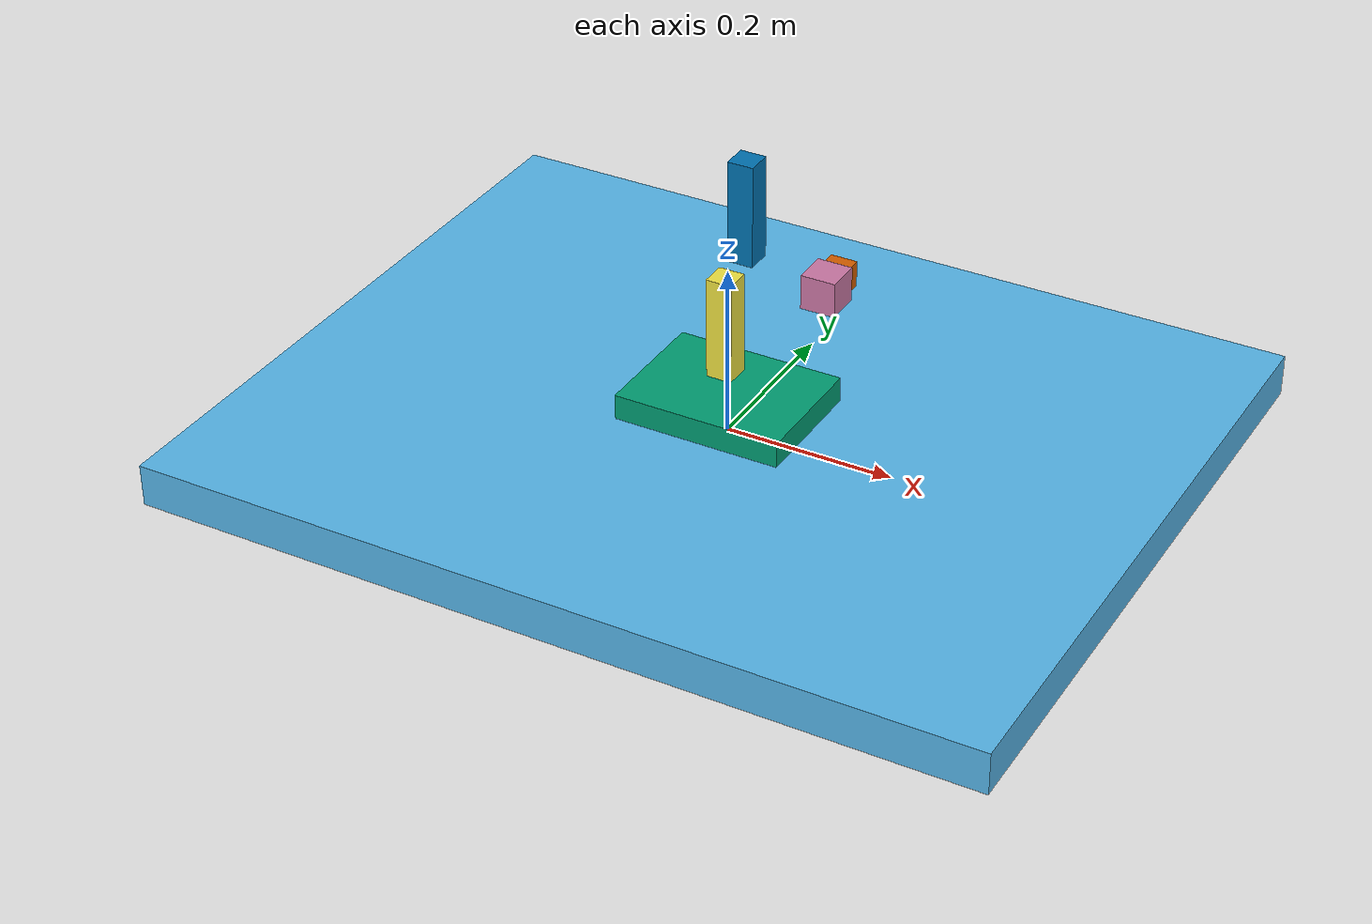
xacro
<?xml version="1.0"?>
<!-- 二分变体: 只保留 table+底盘回转+arm_1+arm_2+括架+爪基座, 无手指链无装饰 mesh -->
<robot name="ep_skel">
  <link name="world"/>
  <link name="table_link">
    <inertial><mass value="10"/><inertia ixx="1" ixy="0" ixz="0" iyy="1" iyz="0" izz="1"/></inertial>
    <visual><geometry><box size="1.0 0.8 0.05"/></geometry></visual>
    <collision><geometry><box size="1.0 0.8 0.05"/></geometry></collision>
  </link>
  <joint name="table_joint" type="fixed">
    <parent link="world"/><child link="table_link"/><origin xyz="0 0 0" rpy="0 0 0"/>
  </joint>
  <joint name="chassis_yaw_joint" type="revolute">
    <parent link="table_link"/><child link="base_link"/>
    <origin xyz="0 0 0.025" rpy="0 0 0"/><axis xyz="0 0 1"/>
    <limit effort="4" velocity="3.14" lower="-6.2832" upper="6.2832"/>
  </joint>
  <link name="base_link">
    <inertial><mass value="1.0"/><inertia ixx="0.01" ixy="0" ixz="0" iyy="0.01" iyz="0" izz="0.01"/></inertial>
    <visual><geometry><box size="0.2 0.15 0.06"/></geometry></visual>
    <collision><geometry><box size="0.2 0.15 0.06"/></geometry></collision>
  </link>
  <joint name="arm_1_joint" type="revolute">
    <origin xyz="0.0103961 -0.0255713 0.125389" rpy="0 0 0"/>
    <parent link="base_link"/><child link="arm_1_link"/>
    <axis xyz="0 1 0"/><limit effort="6" velocity="3" lower="-0.274" upper="1.384"/>
  </joint>
  <link name="arm_1_link">
    <inertial><mass value="0.056"/><inertia ixx="0.0156113" ixy="0" ixz="0" iyy="0.0161553" iyz="0" izz="0.0018092"/></inertial>
    <visual><geometry><box size="0.03 0.03 0.12"/></geometry></visual>
    <collision><geometry><box size="0.03 0.03 0.12"/></geometry></collision>
  </link>
  <joint name="arm_2_joint" type="revolute">
    <origin xyz="0.0018704 0.0438659 0.1210238" rpy="0 0 0"/>
    <parent link="arm_1_link"/><child link="arm_2_link"/>
    <axis xyz="0 1 0"/><limit effort="6" velocity="3" lower="-1.25" upper="0.40"/>
  </joint>
  <link name="arm_2_link">
    <inertial><mass value="0.08"/><inertia ixx="0.0118624" ixy="0" ixz="0" iyy="0.0041691" iyz="0" izz="0.0101456"/></inertial>
    <visual><geometry><box size="0.03 0.03 0.12"/></geometry></visual>
    <collision><geometry><box size="0.03 0.03 0.12"/></geometry></collision>
  </link>
  <joint name="endpoint_bracket_joint" type="revolute">
    <origin xyz="0.1058557 0.006752 -0.0561093" rpy="0 0 0"/>
    <parent link="arm_2_link"/><child link="endpoint_bracket_link"/>
    <axis xyz="0 1 0"/><limit effort="6" velocity="3" lower="-3.14" upper="3.14"/>
  </joint>
  <link name="endpoint_bracket_link">
    <inertial><mass value="0.028"/><inertia ixx="0.0004413" ixy="0" ixz="0" iyy="0.0008301" iyz="0" izz="0.0008237"/></inertial>
    <visual><geometry><box size="0.03 0.03 0.03"/></geometry></visual>
    <collision><geometry><box size="0.03 0.03 0.03"/></geometry></collision>
  </link>
  <joint name="gripper_base_joint" type="fixed">
    <origin xyz="0.0002793 -0.027026 0.0001815" rpy="0 0 0"/>
    <parent link="endpoint_bracket_link"/><child link="gripper_link"/>
  </joint>
  <link name="gripper_link">
    <inertial><mass value="0.15"/><inertia ixx="0.0001376" ixy="0" ixz="0" iyy="0.0002582" iyz="0" izz="0.0002497"/></inertial>
    <visual><geometry><box size="0.04 0.04 0.04"/></geometry></visual>
    <collision><geometry><box size="0.04 0.04 0.04"/></geometry></collision>
  </link>
  <gazebo>
    <plugin filename="libgazebo_ros2_control.so" name="gazebo_ros2_control">
      <ros><node_name>arm_gazebo_ros2_control</node_name></ros>
      <parameters>/home/underwater/arm_grasp_ws/src/arm_grasp_sim/config/controllers.yaml</parameters>
      <robot_param>robot_description</robot_param>
      <robot_param_node>robot_state_publisher</robot_param_node>
    </plugin>
  </gazebo>
  <ros2_control name="skel_system" type="system">
    <hardware><plugin>gazebo_ros2_control/GazeboSystem</plugin></hardware>
    <joint name="chassis_yaw_joint"><command_interface name="velocity"/><state_interface name="position"/><state_interface name="velocity"/></joint>
    <joint name="arm_1_joint"><command_interface name="velocity"/><state_interface name="position"/><state_interface name="velocity"/></joint>
    <joint name="arm_2_joint"><command_interface name="velocity"/><state_interface name="position"/><state_interface name="velocity"/></joint>
    <joint name="endpoint_bracket_joint"><command_interface name="velocity"/><state_interface name="position"/><state_interface name="velocity"/></joint>
  </ros2_control>
</robot>
